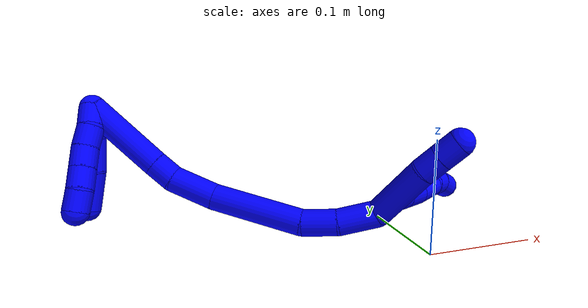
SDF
<sdf version="1.7">
 <world name="default">
  <model name="1">
   <static>0</static>
   <link name="1">
    <collision name="collision-cylinder-e_1_2_8">
     <pose>0.004703 -0.014976 0.002931 1.37754 0.29893 0.24669</pose>
     <geometry><cylinder><radius>0.0125</radius><length>0.031936</length></cylinder></geometry>
     <surface>
      <friction><ode><mu>1.16</mu><mu2>1.16</mu2><slip1>0</slip1><slip2>0</slip2></ode></friction>
      <contact><ode><kp>1e+06</kp><kd>1</kd><max_vel>0</max_vel><min_depth>0.001</min_depth></ode></contact>
     </surface>
    </collision>
    <visual name="visual-cylinder-e_1_2_8">
     <pose>0.004703 -0.014976 0.002931 1.37754 0.29893 0.24669</pose>
     <geometry><cylinder><radius>0.0125</radius><length>0.031936</length></cylinder></geometry>
     <material><ambient>0 0 1 1</ambient></material>
    </visual>
    <collision name="collision-cylinder-e_2_8_9">
     <pose>0.014286 -0.038787 0.009865 1.14532 0.46617 0.303757</pose>
     <geometry><cylinder><radius>0.0125</radius><length>0.021718</length></cylinder></geometry>
     <surface>
      <friction><ode><mu>1.16</mu><mu2>1.16</mu2><slip1>0</slip1><slip2>0</slip2></ode></friction>
      <contact><ode><kp>1e+06</kp><kd>1</kd><max_vel>0</max_vel><min_depth>0.001</min_depth></ode></contact>
     </surface>
    </collision>
    <visual name="visual-cylinder-e_2_8_9">
     <pose>0.014286 -0.038787 0.009865 1.14532 0.46617 0.303757</pose>
     <geometry><cylinder><radius>0.0125</radius><length>0.021718</length></cylinder></geometry>
     <material><ambient>0 0 1 1</ambient></material>
    </visual>
    <collision name="collision-cylinder-e_3_9_10">
     <pose>0.025995 -0.059913 0.019346 1.15164 0.469605 0.30814</pose>
     <geometry><cylinder><radius>0.0125</radius><length>0.030177</length></cylinder></geometry>
     <surface>
      <friction><ode><mu>1.16</mu><mu2>1.16</mu2><slip1>0</slip1><slip2>0</slip2></ode></friction>
      <contact><ode><kp>1e+06</kp><kd>1</kd><max_vel>0</max_vel><min_depth>0.001</min_depth></ode></contact>
     </surface>
    </collision>
    <visual name="visual-cylinder-e_3_9_10">
     <pose>0.025995 -0.059913 0.019346 1.15164 0.469605 0.30814</pose>
     <geometry><cylinder><radius>0.0125</radius><length>0.030177</length></cylinder></geometry>
     <material><ambient>0 0 1 1</ambient></material>
    </visual>
    <collision name="collision-cylinder-e_4_10_11">
     <pose>0.03897 -0.08351 0.025933 1.47283 0.495946 0.451224</pose>
     <geometry><cylinder><radius>0.0125</radius><length>0.025835</length></cylinder></geometry>
     <surface>
      <friction><ode><mu>1.16</mu><mu2>1.16</mu2><slip1>0</slip1><slip2>0</slip2></ode></friction>
      <contact><ode><kp>1e+06</kp><kd>1</kd><max_vel>0</max_vel><min_depth>0.001</min_depth></ode></contact>
     </surface>
    </collision>
    <visual name="visual-cylinder-e_4_10_11">
     <pose>0.03897 -0.08351 0.025933 1.47283 0.495946 0.451224</pose>
     <geometry><cylinder><radius>0.0125</radius><length>0.025835</length></cylinder></geometry>
     <material><ambient>0 0 1 1</ambient></material>
    </visual>
    <collision name="collision-cylinder-e_5_11_12">
     <pose>0.049262 -0.103096 0.031104 1.11484 0.422459 0.265756</pose>
     <geometry><cylinder><radius>0.0125</radius><length>0.020219</length></cylinder></geometry>
     <surface>
      <friction><ode><mu>1.16</mu><mu2>1.16</mu2><slip1>0</slip1><slip2>0</slip2></ode></friction>
      <contact><ode><kp>1e+06</kp><kd>1</kd><max_vel>0</max_vel><min_depth>0.001</min_depth></ode></contact>
     </surface>
    </collision>
    <visual name="visual-cylinder-e_5_11_12">
     <pose>0.049262 -0.103096 0.031104 1.11484 0.422459 0.265756</pose>
     <geometry><cylinder><radius>0.0125</radius><length>0.020219</length></cylinder></geometry>
     <material><ambient>0 0 1 1</ambient></material>
    </visual>
    <collision name="collision-cylinder-e_6_12_6">
     <pose>0.059356 -0.11726 0.040743 0.812125 0.632911 0.27975</pose>
     <geometry><cylinder><radius>0.0125</radius><length>0.020114</length></cylinder></geometry>
     <surface>
      <friction><ode><mu>1.16</mu><mu2>1.16</mu2><slip1>0</slip1><slip2>0</slip2></ode></friction>
      <contact><ode><kp>1e+06</kp><kd>1</kd><max_vel>0</max_vel><min_depth>0.001</min_depth></ode></contact>
     </surface>
    </collision>
    <visual name="visual-cylinder-e_6_12_6">
     <pose>0.059356 -0.11726 0.040743 0.812125 0.632911 0.27975</pose>
     <geometry><cylinder><radius>0.0125</radius><length>0.020114</length></cylinder></geometry>
     <material><ambient>0 0 1 1</ambient></material>
    </visual>
    <collision name="collision-cylinder-e_1_2_13">
     <pose>0.006274 -0.009044 -0.027516 2.82404 0.213323 1.17875</pose>
     <geometry><cylinder><radius>0.0125</radius><length>0.059272</length></cylinder></geometry>
     <surface>
      <friction><ode><mu>1.16</mu><mu2>1.16</mu2><slip1>0</slip1><slip2>0</slip2></ode></friction>
      <contact><ode><kp>1e+06</kp><kd>1</kd><max_vel>0</max_vel><min_depth>0.001</min_depth></ode></contact>
     </surface>
    </collision>
    <visual name="visual-cylinder-e_1_2_13">
     <pose>0.006274 -0.009044 -0.027516 2.82404 0.213323 1.17875</pose>
     <geometry><cylinder><radius>0.0125</radius><length>0.059272</length></cylinder></geometry>
     <material><ambient>0 0 1 1</ambient></material>
    </visual>
    <collision name="collision-cylinder-e_2_13_14">
     <pose>0.015828 -0.022065 -0.063719 2.71219 0.330661 1.30627</pose>
     <geometry><cylinder><radius>0.0125</radius><length>0.020203</length></cylinder></geometry>
     <surface>
      <friction><ode><mu>1.16</mu><mu2>1.16</mu2><slip1>0</slip1><slip2>0</slip2></ode></friction>
      <contact><ode><kp>1e+06</kp><kd>1</kd><max_vel>0</max_vel><min_depth>0.001</min_depth></ode></contact>
     </surface>
    </collision>
    <visual name="visual-cylinder-e_2_13_14">
     <pose>0.015828 -0.022065 -0.063719 2.71219 0.330661 1.30627</pose>
     <geometry><cylinder><radius>0.0125</radius><length>0.020203</length></cylinder></geometry>
     <material><ambient>0 0 1 1</ambient></material>
    </visual>
    <collision name="collision-cylinder-e_3_14_5">
     <pose>0.022449 -0.030139 -0.081202 2.70587 0.33168 1.29477</pose>
     <geometry><cylinder><radius>0.0125</radius><length>0.020525</length></cylinder></geometry>
     <surface>
      <friction><ode><mu>1.16</mu><mu2>1.16</mu2><slip1>0</slip1><slip2>0</slip2></ode></friction>
      <contact><ode><kp>1e+06</kp><kd>1</kd><max_vel>0</max_vel><min_depth>0.001</min_depth></ode></contact>
     </surface>
    </collision>
    <visual name="visual-cylinder-e_3_14_5">
     <pose>0.022449 -0.030139 -0.081202 2.70587 0.33168 1.29477</pose>
     <geometry><cylinder><radius>0.0125</radius><length>0.020525</length></cylinder></geometry>
     <material><ambient>0 0 1 1</ambient></material>
    </visual>
    <collision name="collision-cylinder-e_1_2_15">
     <pose>-0.013882 0.008661 0.008696 -0.783392 -0.846823 0.368076</pose>
     <geometry><cylinder><radius>0.0125</radius><length>0.037059</length></cylinder></geometry>
     <surface>
      <friction><ode><mu>1.16</mu><mu2>1.16</mu2><slip1>0</slip1><slip2>0</slip2></ode></friction>
      <contact><ode><kp>1e+06</kp><kd>1</kd><max_vel>0</max_vel><min_depth>0.001</min_depth></ode></contact>
     </surface>
    </collision>
    <visual name="visual-cylinder-e_1_2_15">
     <pose>-0.013882 0.008661 0.008696 -0.783392 -0.846823 0.368076</pose>
     <geometry><cylinder><radius>0.0125</radius><length>0.037059</length></cylinder></geometry>
     <material><ambient>0 0 1 1</ambient></material>
    </visual>
    <collision name="collision-cylinder-e_2_15_16">
     <pose>-0.041747 0.022006 0.024233 -0.600394 -1.03559 0.349075</pose>
     <geometry><cylinder><radius>0.0125</radius><length>0.032514</length></cylinder></geometry>
     <surface>
      <friction><ode><mu>1.16</mu><mu2>1.16</mu2><slip1>0</slip1><slip2>0</slip2></ode></friction>
      <contact><ode><kp>1e+06</kp><kd>1</kd><max_vel>0</max_vel><min_depth>0.001</min_depth></ode></contact>
     </surface>
    </collision>
    <visual name="visual-cylinder-e_2_15_16">
     <pose>-0.041747 0.022006 0.024233 -0.600394 -1.03559 0.349075</pose>
     <geometry><cylinder><radius>0.0125</radius><length>0.032514</length></cylinder></geometry>
     <material><ambient>0 0 1 1</ambient></material>
    </visual>
    <collision name="collision-cylinder-e_3_16_17">
     <pose>-0.097306 0.028483 0.043833 -0.139587 -1.27028 0.102954</pose>
     <geometry><cylinder><radius>0.0125</radius><length>0.087053</length></cylinder></geometry>
     <surface>
      <friction><ode><mu>1.16</mu><mu2>1.16</mu2><slip1>0</slip1><slip2>0</slip2></ode></friction>
      <contact><ode><kp>1e+06</kp><kd>1</kd><max_vel>0</max_vel><min_depth>0.001</min_depth></ode></contact>
     </surface>
    </collision>
    <visual name="visual-cylinder-e_3_16_17">
     <pose>-0.097306 0.028483 0.043833 -0.139587 -1.27028 0.102954</pose>
     <geometry><cylinder><radius>0.0125</radius><length>0.087053</length></cylinder></geometry>
     <material><ambient>0 0 1 1</ambient></material>
    </visual>
    <collision name="collision-cylinder-e_4_17_18">
     <pose>-0.16015 0.030889 0.058976 -0.251583 -1.45558 0.224391</pose>
     <geometry><cylinder><radius>0.0125</radius><length>0.04282</length></cylinder></geometry>
     <surface>
      <friction><ode><mu>1.16</mu><mu2>1.16</mu2><slip1>0</slip1><slip2>0</slip2></ode></friction>
      <contact><ode><kp>1e+06</kp><kd>1</kd><max_vel>0</max_vel><min_depth>0.001</min_depth></ode></contact>
     </surface>
    </collision>
    <visual name="visual-cylinder-e_4_17_18">
     <pose>-0.16015 0.030889 0.058976 -0.251583 -1.45558 0.224391</pose>
     <geometry><cylinder><radius>0.0125</radius><length>0.04282</length></cylinder></geometry>
     <material><ambient>0 0 1 1</ambient></material>
    </visual>
    <collision name="collision-cylinder-e_5_18_19">
     <pose>-0.192453 0.029794 0.060128 2.19591 -1.3822 -2.0339</pose>
     <geometry><cylinder><radius>0.0125</radius><length>0.022468</length></cylinder></geometry>
     <surface>
      <friction><ode><mu>1.16</mu><mu2>1.16</mu2><slip1>0</slip1><slip2>0</slip2></ode></friction>
      <contact><ode><kp>1e+06</kp><kd>1</kd><max_vel>0</max_vel><min_depth>0.001</min_depth></ode></contact>
     </surface>
    </collision>
    <visual name="visual-cylinder-e_5_18_19">
     <pose>-0.192453 0.029794 0.060128 2.19591 -1.3822 -2.0339</pose>
     <geometry><cylinder><radius>0.0125</radius><length>0.022468</length></cylinder></geometry>
     <material><ambient>0 0 1 1</ambient></material>
    </visual>
    <collision name="collision-cylinder-e_6_19_1">
     <pose>-0.24135 0.02328 0.050664 2.61311 -1.32417 -2.47337</pose>
     <geometry><cylinder><radius>0.0125</radius><length>0.078087</length></cylinder></geometry>
     <surface>
      <friction><ode><mu>1.16</mu><mu2>1.16</mu2><slip1>0</slip1><slip2>0</slip2></ode></friction>
      <contact><ode><kp>1e+06</kp><kd>1</kd><max_vel>0</max_vel><min_depth>0.001</min_depth></ode></contact>
     </surface>
    </collision>
    <visual name="visual-cylinder-e_6_19_1">
     <pose>-0.24135 0.02328 0.050664 2.61311 -1.32417 -2.47337</pose>
     <geometry><cylinder><radius>0.0125</radius><length>0.078087</length></cylinder></geometry>
     <material><ambient>0 0 1 1</ambient></material>
    </visual>
    <collision name="collision-cylinder-e_1_1_20">
     <pose>-0.274767 0.023708 0.055531 -0.380172 0.305282 -0.059182</pose>
     <geometry><cylinder><radius>0.0125</radius><length>0.029579</length></cylinder></geometry>
     <surface>
      <friction><ode><mu>1.16</mu><mu2>1.16</mu2><slip1>0</slip1><slip2>0</slip2></ode></friction>
      <contact><ode><kp>1e+06</kp><kd>1</kd><max_vel>0</max_vel><min_depth>0.001</min_depth></ode></contact>
     </surface>
    </collision>
    <visual name="visual-cylinder-e_1_1_20">
     <pose>-0.274767 0.023708 0.055531 -0.380172 0.305282 -0.059182</pose>
     <geometry><cylinder><radius>0.0125</radius><length>0.029579</length></cylinder></geometry>
     <material><ambient>0 0 1 1</ambient></material>
    </visual>
    <collision name="collision-cylinder-e_2_20_21">
     <pose>-0.263144 0.038274 0.07976 -0.697732 0.458958 -0.16953</pose>
     <geometry><cylinder><radius>0.0125</radius><length>0.032404</length></cylinder></geometry>
     <surface>
      <friction><ode><mu>1.16</mu><mu2>1.16</mu2><slip1>0</slip1><slip2>0</slip2></ode></friction>
      <contact><ode><kp>1e+06</kp><kd>1</kd><max_vel>0</max_vel><min_depth>0.001</min_depth></ode></contact>
     </surface>
    </collision>
    <visual name="visual-cylinder-e_2_20_21">
     <pose>-0.263144 0.038274 0.07976 -0.697732 0.458958 -0.16953</pose>
     <geometry><cylinder><radius>0.0125</radius><length>0.032404</length></cylinder></geometry>
     <material><ambient>0 0 1 1</ambient></material>
    </visual>
    <collision name="collision-cylinder-e_3_21_4">
     <pose>-0.250109 0.058907 0.105009 -0.674993 0.31325 -0.110721</pose>
     <geometry><cylinder><radius>0.0125</radius><length>0.038017</length></cylinder></geometry>
     <surface>
      <friction><ode><mu>1.16</mu><mu2>1.16</mu2><slip1>0</slip1><slip2>0</slip2></ode></friction>
      <contact><ode><kp>1e+06</kp><kd>1</kd><max_vel>0</max_vel><min_depth>0.001</min_depth></ode></contact>
     </surface>
    </collision>
    <visual name="visual-cylinder-e_3_21_4">
     <pose>-0.250109 0.058907 0.105009 -0.674993 0.31325 -0.110721</pose>
     <geometry><cylinder><radius>0.0125</radius><length>0.038017</length></cylinder></geometry>
     <material><ambient>0 0 1 1</ambient></material>
    </visual>
    <collision name="collision-cylinder-e_1_1_22">
     <pose>-0.274403 0.026901 0.04485 -1.29139 0.50166 -0.381406</pose>
     <geometry><cylinder><radius>0.0125</radius><length>0.02</length></cylinder></geometry>
     <surface>
      <friction><ode><mu>1.16</mu><mu2>1.16</mu2><slip1>0</slip1><slip2>0</slip2></ode></friction>
      <contact><ode><kp>1e+06</kp><kd>1</kd><max_vel>0</max_vel><min_depth>0.001</min_depth></ode></contact>
     </surface>
    </collision>
    <visual name="visual-cylinder-e_1_1_22">
     <pose>-0.274403 0.026901 0.04485 -1.29139 0.50166 -0.381406</pose>
     <geometry><cylinder><radius>0.0125</radius><length>0.02</length></cylinder></geometry>
     <material><ambient>0 0 1 1</ambient></material>
    </visual>
    <collision name="collision-cylinder-e_2_22_23">
     <pose>-0.266432 0.043832 0.051476 -1.11129 0.321729 -0.200825</pose>
     <geometry><cylinder><radius>0.0125</radius><length>0.02</length></cylinder></geometry>
     <surface>
      <friction><ode><mu>1.16</mu><mu2>1.16</mu2><slip1>0</slip1><slip2>0</slip2></ode></friction>
      <contact><ode><kp>1e+06</kp><kd>1</kd><max_vel>0</max_vel><min_depth>0.001</min_depth></ode></contact>
     </surface>
    </collision>
    <visual name="visual-cylinder-e_2_22_23">
     <pose>-0.266432 0.043832 0.051476 -1.11129 0.321729 -0.200825</pose>
     <geometry><cylinder><radius>0.0125</radius><length>0.02</length></cylinder></geometry>
     <material><ambient>0 0 1 1</ambient></material>
    </visual>
    <collision name="collision-cylinder-e_3_23_24">
     <pose>-0.258896 0.060515 0.059418 -1.14254 0.452714 -0.293926</pose>
     <geometry><cylinder><radius>0.0125</radius><length>0.02</length></cylinder></geometry>
     <surface>
      <friction><ode><mu>1.16</mu><mu2>1.16</mu2><slip1>0</slip1><slip2>0</slip2></ode></friction>
      <contact><ode><kp>1e+06</kp><kd>1</kd><max_vel>0</max_vel><min_depth>0.001</min_depth></ode></contact>
     </surface>
    </collision>
    <visual name="visual-cylinder-e_3_23_24">
     <pose>-0.258896 0.060515 0.059418 -1.14254 0.452714 -0.293926</pose>
     <geometry><cylinder><radius>0.0125</radius><length>0.02</length></cylinder></geometry>
     <material><ambient>0 0 1 1</ambient></material>
    </visual>
    <collision name="collision-cylinder-e_4_24_25">
     <pose>-0.250149 0.076892 0.066853 -1.14664 0.452628 -0.295177</pose>
     <geometry><cylinder><radius>0.0125</radius><length>0.02</length></cylinder></geometry>
     <surface>
      <friction><ode><mu>1.16</mu><mu2>1.16</mu2><slip1>0</slip1><slip2>0</slip2></ode></friction>
      <contact><ode><kp>1e+06</kp><kd>1</kd><max_vel>0</max_vel><min_depth>0.001</min_depth></ode></contact>
     </surface>
    </collision>
    <visual name="visual-cylinder-e_4_24_25">
     <pose>-0.250149 0.076892 0.066853 -1.14664 0.452628 -0.295177</pose>
     <geometry><cylinder><radius>0.0125</radius><length>0.02</length></cylinder></geometry>
     <material><ambient>0 0 1 1</ambient></material>
    </visual>
    <collision name="collision-cylinder-e_5_25_3">
     <pose>-0.242339 0.092824 0.075878 -0.96803 0.350784 -0.185794</pose>
     <geometry><cylinder><radius>0.0125</radius><length>0.02</length></cylinder></geometry>
     <surface>
      <friction><ode><mu>1.16</mu><mu2>1.16</mu2><slip1>0</slip1><slip2>0</slip2></ode></friction>
      <contact><ode><kp>1e+06</kp><kd>1</kd><max_vel>0</max_vel><min_depth>0.001</min_depth></ode></contact>
     </surface>
    </collision>
    <visual name="visual-cylinder-e_5_25_3">
     <pose>-0.242339 0.092824 0.075878 -0.96803 0.350784 -0.185794</pose>
     <geometry><cylinder><radius>0.0125</radius><length>0.02</length></cylinder></geometry>
     <material><ambient>0 0 1 1</ambient></material>
    </visual>
    <collision name="collision-sphere-3">
     <pose>-0.238903 0.10056 0.081202 0 -0 0</pose>
     <geometry><sphere><radius>0.0125</radius></sphere></geometry>
     <surface>
      <friction><ode><mu>1.16</mu><mu2>1.16</mu2><slip1>0</slip1><slip2>0</slip2></ode></friction>
      <contact><ode><kp>1e+06</kp><kd>1</kd><max_vel>0</max_vel><min_depth>0.001</min_depth></ode></contact>
     </surface>
    </collision>
    <visual name="visual-sphere-3">
     <pose>-0.238903 0.10056 0.081202 0 -0 0</pose>
     <geometry><sphere><radius>0.0125</radius></sphere></geometry>
     <material><ambient>0 0 1 1</ambient></material>
    </visual>
    <collision name="collision-sphere-25">
     <pose>-0.245775 0.085088 0.070554 0 -0 0</pose>
     <geometry><sphere><radius>0.0125</radius></sphere></geometry>
     <surface>
      <friction><ode><mu>1.16</mu><mu2>1.16</mu2><slip1>0</slip1><slip2>0</slip2></ode></friction>
      <contact><ode><kp>1e+06</kp><kd>1</kd><max_vel>0</max_vel><min_depth>0.001</min_depth></ode></contact>
     </surface>
    </collision>
    <visual name="visual-sphere-25">
     <pose>-0.245775 0.085088 0.070554 0 -0 0</pose>
     <geometry><sphere><radius>0.0125</radius></sphere></geometry>
     <material><ambient>0 0 1 1</ambient></material>
    </visual>
    <collision name="collision-sphere-24">
     <pose>-0.254522 0.068696 0.063152 0 -0 0</pose>
     <geometry><sphere><radius>0.0125</radius></sphere></geometry>
     <surface>
      <friction><ode><mu>1.16</mu><mu2>1.16</mu2><slip1>0</slip1><slip2>0</slip2></ode></friction>
      <contact><ode><kp>1e+06</kp><kd>1</kd><max_vel>0</max_vel><min_depth>0.001</min_depth></ode></contact>
     </surface>
    </collision>
    <visual name="visual-sphere-24">
     <pose>-0.254522 0.068696 0.063152 0 -0 0</pose>
     <geometry><sphere><radius>0.0125</radius></sphere></geometry>
     <material><ambient>0 0 1 1</ambient></material>
    </visual>
    <collision name="collision-sphere-23">
     <pose>-0.26327 0.052335 0.055683 0 -0 0</pose>
     <geometry><sphere><radius>0.0125</radius></sphere></geometry>
     <surface>
      <friction><ode><mu>1.16</mu><mu2>1.16</mu2><slip1>0</slip1><slip2>0</slip2></ode></friction>
      <contact><ode><kp>1e+06</kp><kd>1</kd><max_vel>0</max_vel><min_depth>0.001</min_depth></ode></contact>
     </surface>
    </collision>
    <visual name="visual-sphere-23">
     <pose>-0.26327 0.052335 0.055683 0 -0 0</pose>
     <geometry><sphere><radius>0.0125</radius></sphere></geometry>
     <material><ambient>0 0 1 1</ambient></material>
    </visual>
    <collision name="collision-sphere-22">
     <pose>-0.269594 0.035329 0.047268 0 -0 0</pose>
     <geometry><sphere><radius>0.0125</radius></sphere></geometry>
     <surface>
      <friction><ode><mu>1.16</mu><mu2>1.16</mu2><slip1>0</slip1><slip2>0</slip2></ode></friction>
      <contact><ode><kp>1e+06</kp><kd>1</kd><max_vel>0</max_vel><min_depth>0.001</min_depth></ode></contact>
     </surface>
    </collision>
    <visual name="visual-sphere-22">
     <pose>-0.269594 0.035329 0.047268 0 -0 0</pose>
     <geometry><sphere><radius>0.0125</radius></sphere></geometry>
     <material><ambient>0 0 1 1</ambient></material>
    </visual>
    <collision name="collision-sphere-4">
     <pose>-0.244251 0.070207 0.119127 0 -0 0</pose>
     <geometry><sphere><radius>0.0125</radius></sphere></geometry>
     <surface>
      <friction><ode><mu>1.16</mu><mu2>1.16</mu2><slip1>0</slip1><slip2>0</slip2></ode></friction>
      <contact><ode><kp>1e+06</kp><kd>1</kd><max_vel>0</max_vel><min_depth>0.001</min_depth></ode></contact>
     </surface>
    </collision>
    <visual name="visual-sphere-4">
     <pose>-0.244251 0.070207 0.119127 0 -0 0</pose>
     <geometry><sphere><radius>0.0125</radius></sphere></geometry>
     <material><ambient>0 0 1 1</ambient></material>
    </visual>
    <collision name="collision-sphere-21">
     <pose>-0.255966 0.047606 0.090891 0 -0 0</pose>
     <geometry><sphere><radius>0.0125</radius></sphere></geometry>
     <surface>
      <friction><ode><mu>1.16</mu><mu2>1.16</mu2><slip1>0</slip1><slip2>0</slip2></ode></friction>
      <contact><ode><kp>1e+06</kp><kd>1</kd><max_vel>0</max_vel><min_depth>0.001</min_depth></ode></contact>
     </surface>
    </collision>
    <visual name="visual-sphere-21">
     <pose>-0.255966 0.047606 0.090891 0 -0 0</pose>
     <geometry><sphere><radius>0.0125</radius></sphere></geometry>
     <material><ambient>0 0 1 1</ambient></material>
    </visual>
    <collision name="collision-sphere-20">
     <pose>-0.270321 0.028942 0.068629 0 -0 0</pose>
     <geometry><sphere><radius>0.0125</radius></sphere></geometry>
     <surface>
      <friction><ode><mu>1.16</mu><mu2>1.16</mu2><slip1>0</slip1><slip2>0</slip2></ode></friction>
      <contact><ode><kp>1e+06</kp><kd>1</kd><max_vel>0</max_vel><min_depth>0.001</min_depth></ode></contact>
     </surface>
    </collision>
    <visual name="visual-sphere-20">
     <pose>-0.270321 0.028942 0.068629 0 -0 0</pose>
     <geometry><sphere><radius>0.0125</radius></sphere></geometry>
     <material><ambient>0 0 1 1</ambient></material>
    </visual>
    <collision name="collision-sphere-12">
     <pose>0.053407 -0.111375 0.035165 0 -0 0</pose>
     <geometry><sphere><radius>0.0125</radius></sphere></geometry>
     <surface>
      <friction><ode><mu>1.16</mu><mu2>1.16</mu2><slip1>0</slip1><slip2>0</slip2></ode></friction>
      <contact><ode><kp>1e+06</kp><kd>1</kd><max_vel>0</max_vel><min_depth>0.001</min_depth></ode></contact>
     </surface>
    </collision>
    <visual name="visual-sphere-12">
     <pose>0.053407 -0.111375 0.035165 0 -0 0</pose>
     <geometry><sphere><radius>0.0125</radius></sphere></geometry>
     <material><ambient>0 0 1 1</ambient></material>
    </visual>
    <collision name="collision-sphere-11">
     <pose>0.045117 -0.094817 0.027044 0 -0 0</pose>
     <geometry><sphere><radius>0.0125</radius></sphere></geometry>
     <surface>
      <friction><ode><mu>1.16</mu><mu2>1.16</mu2><slip1>0</slip1><slip2>0</slip2></ode></friction>
      <contact><ode><kp>1e+06</kp><kd>1</kd><max_vel>0</max_vel><min_depth>0.001</min_depth></ode></contact>
     </surface>
    </collision>
    <visual name="visual-sphere-11">
     <pose>0.045117 -0.094817 0.027044 0 -0 0</pose>
     <geometry><sphere><radius>0.0125</radius></sphere></geometry>
     <material><ambient>0 0 1 1</ambient></material>
    </visual>
    <collision name="collision-sphere-10">
     <pose>0.032823 -0.072203 0.024822 0 -0 0</pose>
     <geometry><sphere><radius>0.0125</radius></sphere></geometry>
     <surface>
      <friction><ode><mu>1.16</mu><mu2>1.16</mu2><slip1>0</slip1><slip2>0</slip2></ode></friction>
      <contact><ode><kp>1e+06</kp><kd>1</kd><max_vel>0</max_vel><min_depth>0.001</min_depth></ode></contact>
     </surface>
    </collision>
    <visual name="visual-sphere-10">
     <pose>0.032823 -0.072203 0.024822 0 -0 0</pose>
     <geometry><sphere><radius>0.0125</radius></sphere></geometry>
     <material><ambient>0 0 1 1</ambient></material>
    </visual>
    <collision name="collision-sphere-9">
     <pose>0.019167 -0.047623 0.013869 0 -0 0</pose>
     <geometry><sphere><radius>0.0125</radius></sphere></geometry>
     <surface>
      <friction><ode><mu>1.16</mu><mu2>1.16</mu2><slip1>0</slip1><slip2>0</slip2></ode></friction>
      <contact><ode><kp>1e+06</kp><kd>1</kd><max_vel>0</max_vel><min_depth>0.001</min_depth></ode></contact>
     </surface>
    </collision>
    <visual name="visual-sphere-9">
     <pose>0.019167 -0.047623 0.013869 0 -0 0</pose>
     <geometry><sphere><radius>0.0125</radius></sphere></geometry>
     <material><ambient>0 0 1 1</ambient></material>
    </visual>
    <collision name="collision-sphere-2">
     <geometry><sphere><radius>0.0125</radius></sphere></geometry>
     <surface>
      <friction><ode><mu>1.16</mu><mu2>1.16</mu2><slip1>0</slip1><slip2>0</slip2></ode></friction>
      <contact><ode><kp>1e+06</kp><kd>1</kd><max_vel>0</max_vel><min_depth>0.001</min_depth></ode></contact>
     </surface>
    </collision>
    <visual name="visual-sphere-2">
     <geometry><sphere><radius>0.0125</radius></sphere></geometry>
     <material><ambient>0 0 1 1</ambient></material>
    </visual>
    <collision name="collision-sphere-19">
     <pose>-0.203488 0.028086 0.058895 0 -0 0</pose>
     <geometry><sphere><radius>0.0125</radius></sphere></geometry>
     <surface>
      <friction><ode><mu>1.16</mu><mu2>1.16</mu2><slip1>0</slip1><slip2>0</slip2></ode></friction>
      <contact><ode><kp>1e+06</kp><kd>1</kd><max_vel>0</max_vel><min_depth>0.001</min_depth></ode></contact>
     </surface>
    </collision>
    <visual name="visual-sphere-19">
     <pose>-0.203488 0.028086 0.058895 0 -0 0</pose>
     <geometry><sphere><radius>0.0125</radius></sphere></geometry>
     <material><ambient>0 0 1 1</ambient></material>
    </visual>
    <collision name="collision-sphere-8">
     <pose>0.009405 -0.029952 0.005862 0 -0 0</pose>
     <geometry><sphere><radius>0.0125</radius></sphere></geometry>
     <surface>
      <friction><ode><mu>1.16</mu><mu2>1.16</mu2><slip1>0</slip1><slip2>0</slip2></ode></friction>
      <contact><ode><kp>1e+06</kp><kd>1</kd><max_vel>0</max_vel><min_depth>0.001</min_depth></ode></contact>
     </surface>
    </collision>
    <visual name="visual-sphere-8">
     <pose>0.009405 -0.029952 0.005862 0 -0 0</pose>
     <geometry><sphere><radius>0.0125</radius></sphere></geometry>
     <material><ambient>0 0 1 1</ambient></material>
    </visual>
    <collision name="collision-sphere-6">
     <pose>0.065304 -0.123145 0.046322 0 -0 0</pose>
     <geometry><sphere><radius>0.0125</radius></sphere></geometry>
     <surface>
      <friction><ode><mu>1.16</mu><mu2>1.16</mu2><slip1>0</slip1><slip2>0</slip2></ode></friction>
      <contact><ode><kp>1e+06</kp><kd>1</kd><max_vel>0</max_vel><min_depth>0.001</min_depth></ode></contact>
     </surface>
    </collision>
    <visual name="visual-sphere-6">
     <pose>0.065304 -0.123145 0.046322 0 -0 0</pose>
     <geometry><sphere><radius>0.0125</radius></sphere></geometry>
     <material><ambient>0 0 1 1</ambient></material>
    </visual>
    <collision name="collision-sphere-13">
     <pose>0.012548 -0.018088 -0.055032 0 -0 0</pose>
     <geometry><sphere><radius>0.0125</radius></sphere></geometry>
     <surface>
      <friction><ode><mu>1.16</mu><mu2>1.16</mu2><slip1>0</slip1><slip2>0</slip2></ode></friction>
      <contact><ode><kp>1e+06</kp><kd>1</kd><max_vel>0</max_vel><min_depth>0.001</min_depth></ode></contact>
     </surface>
    </collision>
    <visual name="visual-sphere-13">
     <pose>0.012548 -0.018088 -0.055032 0 -0 0</pose>
     <geometry><sphere><radius>0.0125</radius></sphere></geometry>
     <material><ambient>0 0 1 1</ambient></material>
    </visual>
    <collision name="collision-sphere-14">
     <pose>0.019108 -0.026043 -0.072406 0 -0 0</pose>
     <geometry><sphere><radius>0.0125</radius></sphere></geometry>
     <surface>
      <friction><ode><mu>1.16</mu><mu2>1.16</mu2><slip1>0</slip1><slip2>0</slip2></ode></friction>
      <contact><ode><kp>1e+06</kp><kd>1</kd><max_vel>0</max_vel><min_depth>0.001</min_depth></ode></contact>
     </surface>
    </collision>
    <visual name="visual-sphere-14">
     <pose>0.019108 -0.026043 -0.072406 0 -0 0</pose>
     <geometry><sphere><radius>0.0125</radius></sphere></geometry>
     <material><ambient>0 0 1 1</ambient></material>
    </visual>
    <collision name="collision-sphere-5">
     <pose>0.025791 -0.034234 -0.089999 0 -0 0</pose>
     <geometry><sphere><radius>0.0125</radius></sphere></geometry>
     <surface>
      <friction><ode><mu>1.16</mu><mu2>1.16</mu2><slip1>0</slip1><slip2>0</slip2></ode></friction>
      <contact><ode><kp>1e+06</kp><kd>1</kd><max_vel>0</max_vel><min_depth>0.001</min_depth></ode></contact>
     </surface>
    </collision>
    <visual name="visual-sphere-5">
     <pose>0.025791 -0.034234 -0.089999 0 -0 0</pose>
     <geometry><sphere><radius>0.0125</radius></sphere></geometry>
     <material><ambient>0 0 1 1</ambient></material>
    </visual>
    <collision name="collision-sphere-15">
     <pose>-0.027764 0.017322 0.017392 0 -0 0</pose>
     <geometry><sphere><radius>0.0125</radius></sphere></geometry>
     <surface>
      <friction><ode><mu>1.16</mu><mu2>1.16</mu2><slip1>0</slip1><slip2>0</slip2></ode></friction>
      <contact><ode><kp>1e+06</kp><kd>1</kd><max_vel>0</max_vel><min_depth>0.001</min_depth></ode></contact>
     </surface>
    </collision>
    <visual name="visual-sphere-15">
     <pose>-0.027764 0.017322 0.017392 0 -0 0</pose>
     <geometry><sphere><radius>0.0125</radius></sphere></geometry>
     <material><ambient>0 0 1 1</ambient></material>
    </visual>
    <collision name="collision-sphere-16">
     <pose>-0.055731 0.026691 0.031074 0 -0 0</pose>
     <geometry><sphere><radius>0.0125</radius></sphere></geometry>
     <surface>
      <friction><ode><mu>1.16</mu><mu2>1.16</mu2><slip1>0</slip1><slip2>0</slip2></ode></friction>
      <contact><ode><kp>1e+06</kp><kd>1</kd><max_vel>0</max_vel><min_depth>0.001</min_depth></ode></contact>
     </surface>
    </collision>
    <visual name="visual-sphere-16">
     <pose>-0.055731 0.026691 0.031074 0 -0 0</pose>
     <geometry><sphere><radius>0.0125</radius></sphere></geometry>
     <material><ambient>0 0 1 1</ambient></material>
    </visual>
    <collision name="collision-sphere-17">
     <pose>-0.138882 0.030276 0.056592 0 -0 0</pose>
     <geometry><sphere><radius>0.0125</radius></sphere></geometry>
     <surface>
      <friction><ode><mu>1.16</mu><mu2>1.16</mu2><slip1>0</slip1><slip2>0</slip2></ode></friction>
      <contact><ode><kp>1e+06</kp><kd>1</kd><max_vel>0</max_vel><min_depth>0.001</min_depth></ode></contact>
     </surface>
    </collision>
    <visual name="visual-sphere-17">
     <pose>-0.138882 0.030276 0.056592 0 -0 0</pose>
     <geometry><sphere><radius>0.0125</radius></sphere></geometry>
     <material><ambient>0 0 1 1</ambient></material>
    </visual>
    <collision name="collision-sphere-18">
     <pose>-0.181418 0.031501 0.06136 0 -0 0</pose>
     <geometry><sphere><radius>0.0125</radius></sphere></geometry>
     <surface>
      <friction><ode><mu>1.16</mu><mu2>1.16</mu2><slip1>0</slip1><slip2>0</slip2></ode></friction>
      <contact><ode><kp>1e+06</kp><kd>1</kd><max_vel>0</max_vel><min_depth>0.001</min_depth></ode></contact>
     </surface>
    </collision>
    <visual name="visual-sphere-18">
     <pose>-0.181418 0.031501 0.06136 0 -0 0</pose>
     <geometry><sphere><radius>0.0125</radius></sphere></geometry>
     <material><ambient>0 0 1 1</ambient></material>
    </visual>
    <collision name="collision-sphere-1">
     <pose>-0.279212 0.018473 0.042432 0 -0 0</pose>
     <geometry><sphere><radius>0.0125</radius></sphere></geometry>
     <surface>
      <friction><ode><mu>1.16</mu><mu2>1.16</mu2><slip1>0</slip1><slip2>0</slip2></ode></friction>
      <contact><ode><kp>1e+06</kp><kd>1</kd><max_vel>0</max_vel><min_depth>0.001</min_depth></ode></contact>
     </surface>
    </collision>
    <visual name="visual-sphere-1">
     <pose>-0.279212 0.018473 0.042432 0 -0 0</pose>
     <geometry><sphere><radius>0.0125</radius></sphere></geometry>
     <material><ambient>0 0 1 1</ambient></material>
    </visual>
    <inertial>
     <pose>-0.115711 0.008262 0.03383 0 -0 0</pose>
     <mass>0.75</mass>
     <inertia><ixx>6.4e-05</ixx><ixy>0</ixy><ixz>0</ixz><iyy>0.000152</iyy><iyz>0</iyz><izz>0.00011</izz></inertia>
    </inertial>
   </link>
   <pose>-0.023875 0.05333 0.021612 -2.60544 0.47909 -0.493326</pose>
  </model>
 </world>
</sdf>
